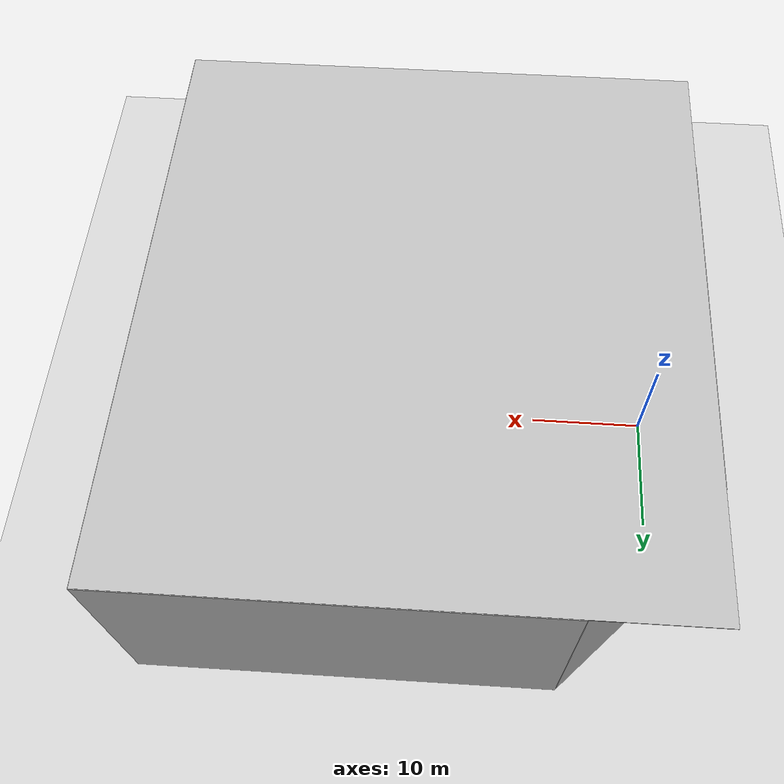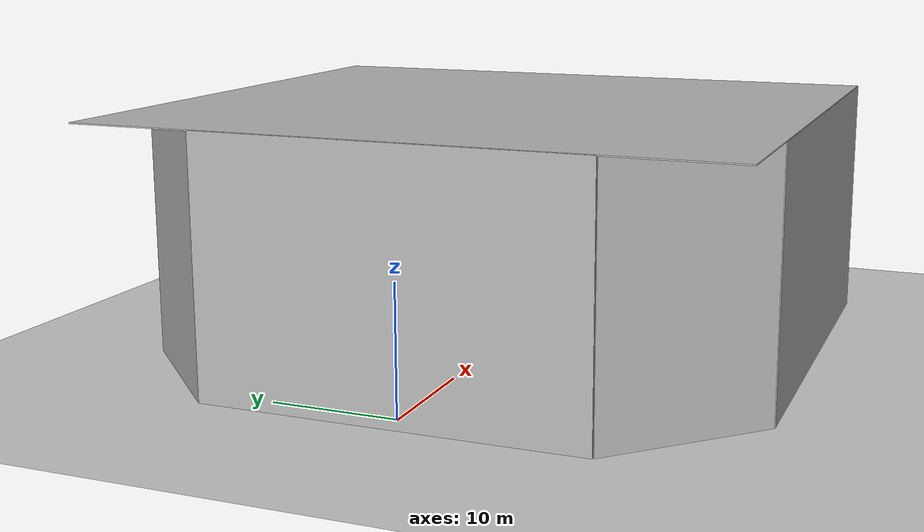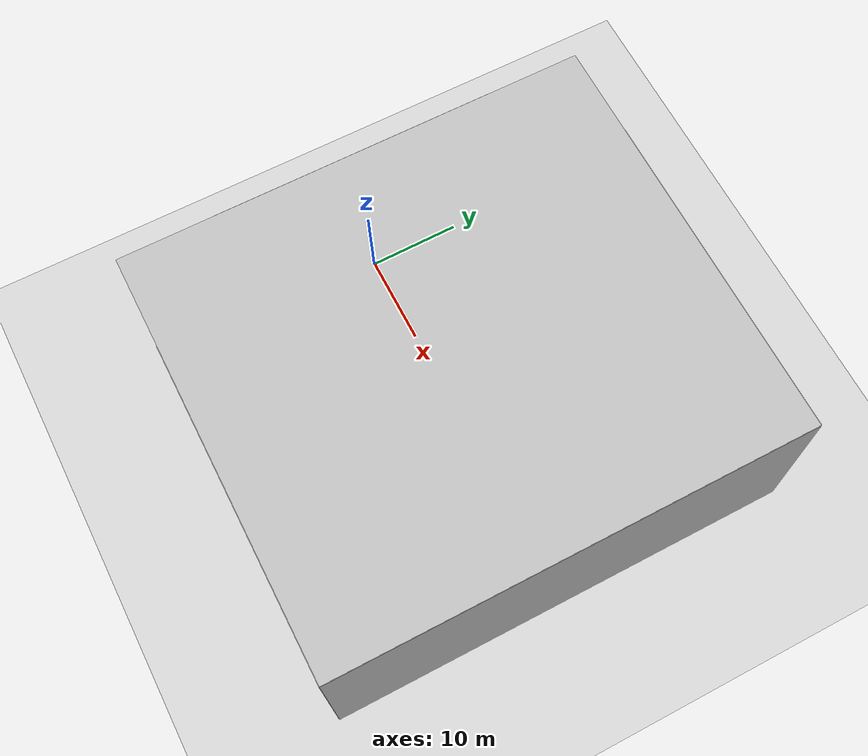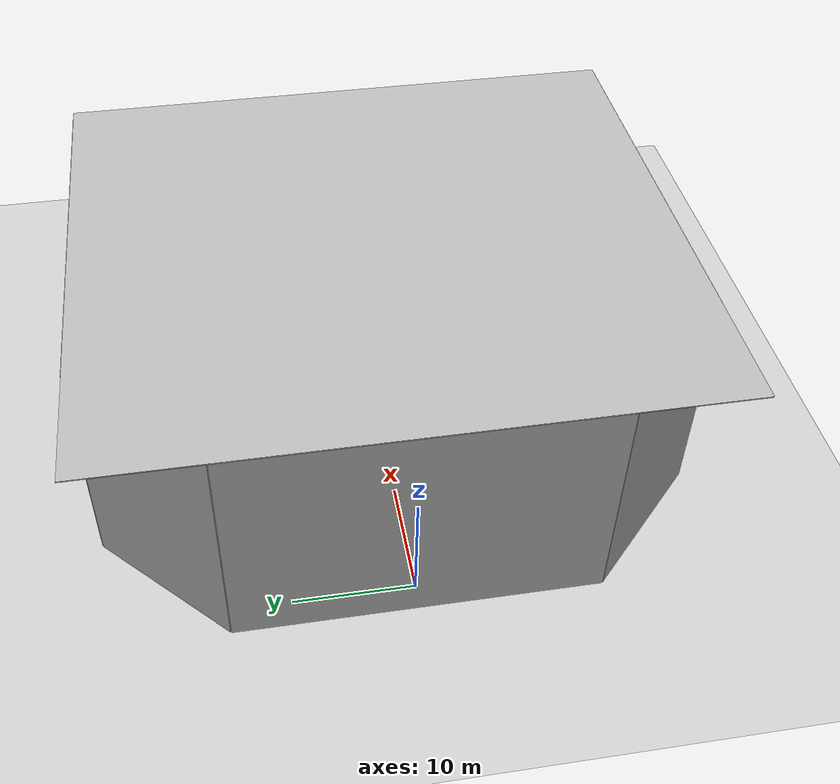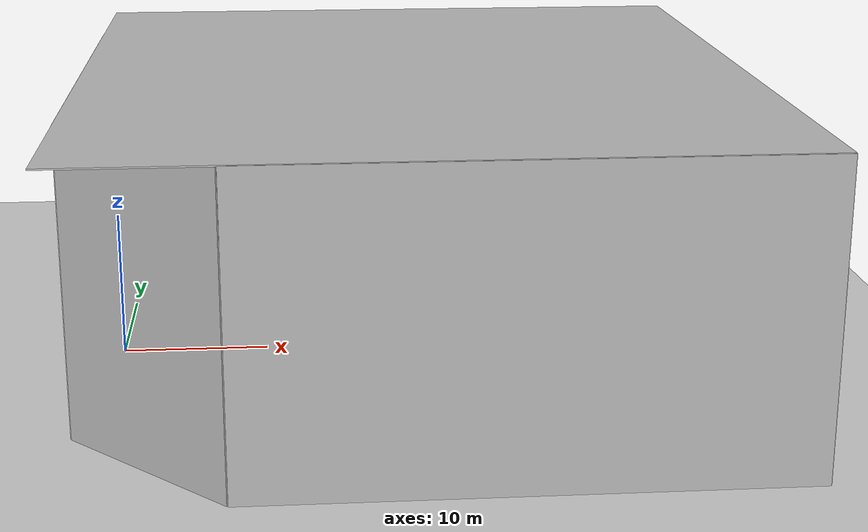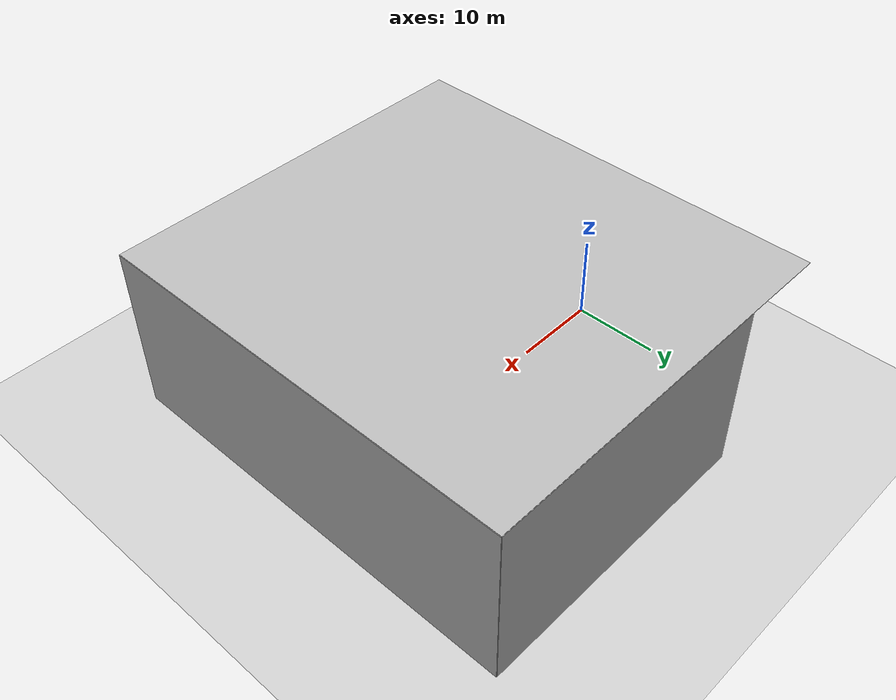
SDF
<sdf version="1.5">
 <world name="default">
  <include><uri>model://sun</uri></include>
  <include><uri>model://ground_plane</uri></include>
  <model name="wall1">
   <static>true</static>
   <pose>-2 0 10 0 0 0</pose>
   <link name="link">
    <collision name="collision"><geometry><box><size>0.1 30 20</size></box></geometry></collision>
    <visual name="visual"><geometry><box><size>0.1 30 20</size></box></geometry></visual>
   </link>
  </model>
  <model name="wall2">
   <static>true</static>
   <pose>43 0 10 0 0 0</pose>
   <link name="link">
    <collision name="collision"><geometry><box><size>0.1 50 20</size></box></geometry></collision>
    <visual name="visual"><geometry><box><size>0.1 50 20</size></box></geometry></visual>
   </link>
  </model>
  <model name="wall3">
   <static>true</static>
   <pose>25.5 -25 10 0 0 0</pose>
   <link name="link">
    <collision name="collision"><geometry><box><size>35 0.1 20</size></box></geometry></collision>
    <visual name="visual"><geometry><box><size>35 0.1 20</size></box></geometry></visual>
   </link>
  </model>
  <model name="wall4">
   <static>true</static>
   <pose>25.5 25 10 0 0 0</pose>
   <link name="link">
    <collision name="collision"><geometry><box><size>35 0.1 20</size></box></geometry></collision>
    <visual name="visual"><geometry><box><size>35 0.1 20</size></box></geometry></visual>
   </link>
  </model>
  <model name="wall5">
   <static>true</static>
   <pose>3 20 10 0 0 -0.785398163</pose>
   <link name="link">
    <collision name="collision"><geometry><box><size>0.1 14 20</size></box></geometry></collision>
    <visual name="visual"><geometry><box><size>0.1 14 20</size></box></geometry></visual>
   </link>
  </model>
  <model name="wall6">
   <static>true</static>
   <pose>3 -20 10 0 0 0.785398163</pose>
   <link name="link">
    <collision name="collision"><geometry><box><size>0.1 14 20</size></box></geometry></collision>
    <visual name="visual"><geometry><box><size>0.1 14 20</size></box></geometry></visual>
   </link>
  </model>
  <model name="wall7">
   <static>true</static>
   <pose>20.5 0 20 0 0 0</pose>
   <link name="link">
    <collision name="collision"><geometry><box><size>45 50 0.1</size></box></geometry></collision>
    <visual name="visual"><geometry><box><size>45 50 0.1</size></box></geometry></visual>
   </link>
  </model>
  <spherical_coordinates>
   <surface_model>EARTH_WGS84</surface_model>
   <latitude_deg>47.3667</latitude_deg>
   <longitude_deg>8.5500</longitude_deg>
   <elevation>500.0</elevation>
   <heading_deg>0</heading_deg>
  </spherical_coordinates>
  <physics type="ode">
   <ode>
    <solver><type>quick</type><iters>1000</iters><sor>1.3</sor></solver>
    <constraints>
     <cfm>0</cfm>
     <erp>0.2</erp>
     <contact_max_correcting_vel>100</contact_max_correcting_vel>
     <contact_surface_layer>0.001</contact_surface_layer>
    </constraints>
   </ode>
   <max_step_size>0.002</max_step_size>
   <real_time_factor>1</real_time_factor>
   <real_time_update_rate>500</real_time_update_rate>
   <gravity>0 0 -9.8</gravity>
  </physics>
 </world>
</sdf>
